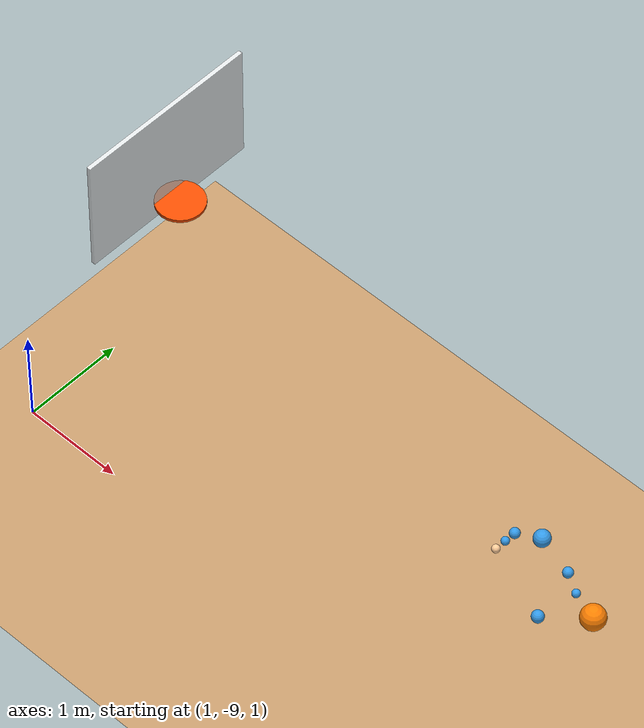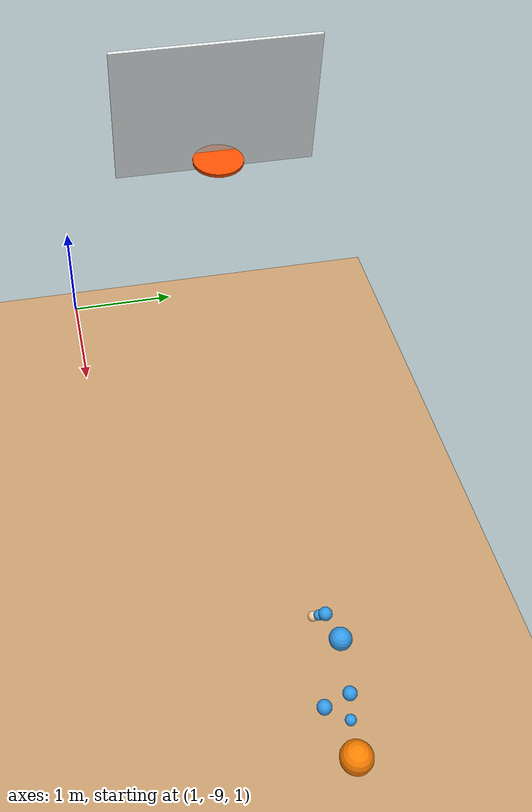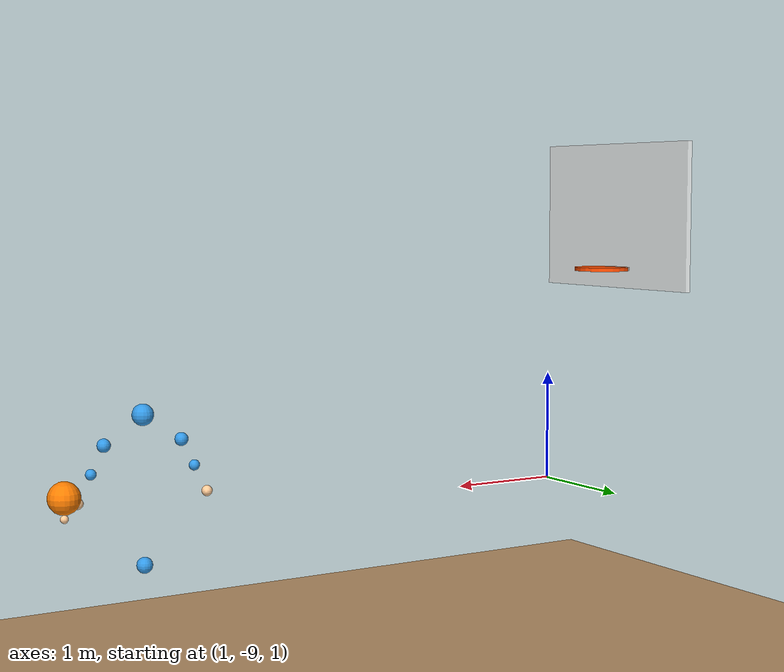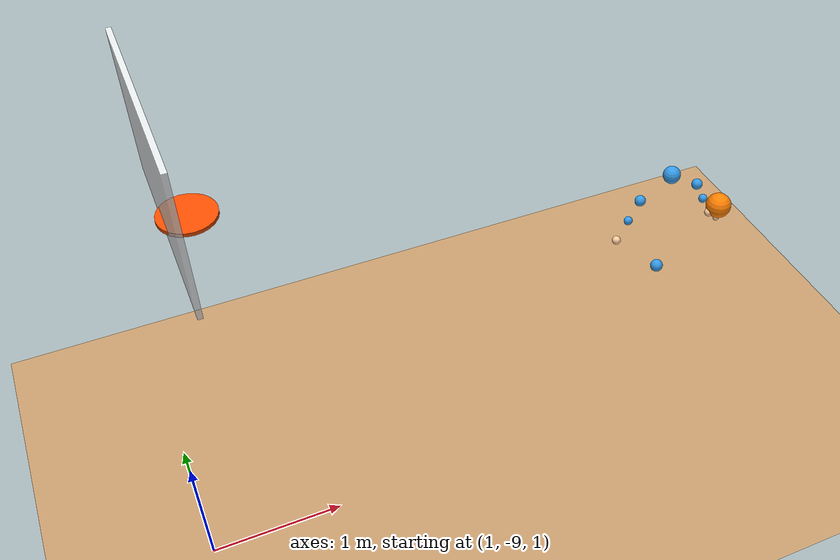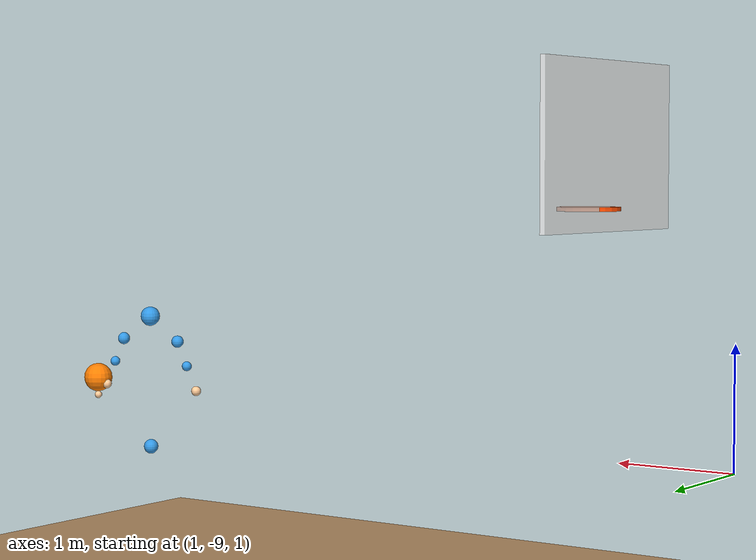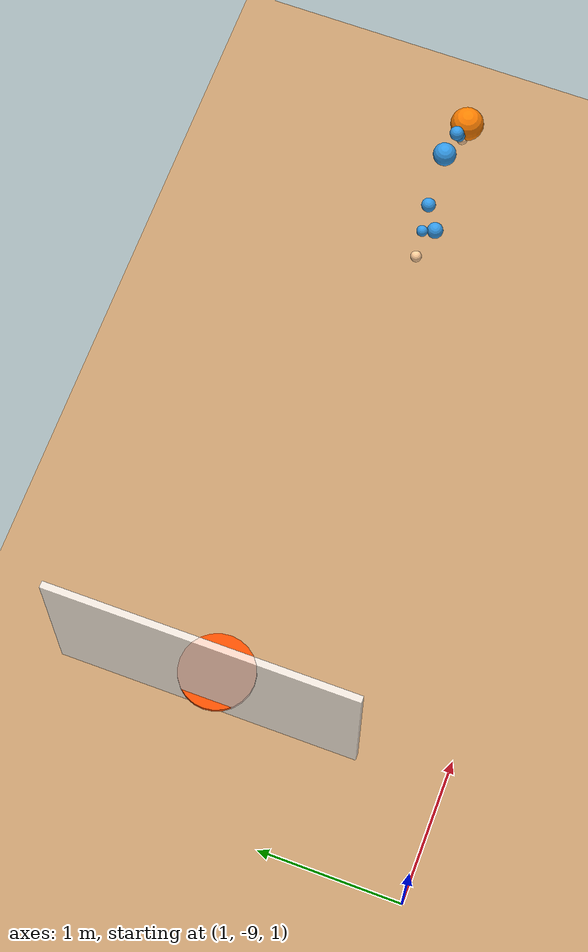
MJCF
<?xml version="1.0" encoding="utf-8"?>
<mujoco model="keypoints_visualization">
    <!--
    Simple visualization: Each keypoint is an independent sphere.
    Positions come directly from the skeleton data.
    -->

    <option gravity="0 0 -9.81" timestep="0.002"/>

    <visual>
        <global offwidth="1920" offheight="1080"/>
        <headlight ambient="0.5 0.5 0.5" diffuse="0.8 0.8 0.8"/>
    </visual>

    <asset>
        <material name="court" rgba="0.76 0.60 0.42 1"/>
        <material name="ball" rgba="1 0.5 0 1"/>
        <material name="joint" rgba="0.2 0.6 0.9 1"/>
        <material name="hand" rgba="1 0.8 0.6 1"/>
        <material name="rim" rgba="1 0.3 0 1"/>
    </asset>

    <worldbody>
        <light pos="5 -8 10" dir="0 0 -1" diffuse="1 1 1"/>

        <!-- Court -->
        <geom name="court" type="plane" size="15 15 0.1" material="court"/>

        <!-- Hoop placeholder - position will be updated -->
        <body name="hoop" pos="1.5 -7.6 3.05">
            <geom name="rim" type="cylinder" size="0.229 0.015" material="rim"/>
            <geom name="backboard" type="box" pos="-0.15 0 0.45" size="0.02 0.91 0.61" rgba="1 1 1 0.8"/>
        </body>

        <!-- Each keypoint as independent body with freejoint -->

        <!-- Right arm (shooting) -->
        <body name="r_shoulder" pos="6 -7.6 1.9">
            <freejoint/>
            <geom type="sphere" size="0.05" material="joint"/>
        </body>

        <body name="r_elbow" pos="6.1 -7.6 1.7">
            <freejoint/>
            <geom type="sphere" size="0.04" material="joint"/>
        </body>

        <body name="r_wrist" pos="6.2 -7.6 1.5">
            <freejoint/>
            <geom type="sphere" size="0.04" material="hand"/>
        </body>

        <body name="r_finger" pos="6.3 -7.6 1.4">
            <freejoint/>
            <geom type="sphere" size="0.03" material="hand"/>
        </body>

        <!-- Left arm (guide) -->
        <body name="l_shoulder" pos="5.4 -7.6 1.9">
            <freejoint/>
            <geom type="sphere" size="0.05" material="joint"/>
        </body>

        <body name="l_elbow" pos="5.3 -7.6 1.7">
            <freejoint/>
            <geom type="sphere" size="0.04" material="joint"/>
        </body>

        <body name="l_wrist" pos="5.2 -7.6 1.5">
            <freejoint/>
            <geom type="sphere" size="0.04" material="hand"/>
        </body>

        <!-- Head and torso -->
        <body name="head" pos="5.7 -7.6 2.1">
            <freejoint/>
            <geom type="sphere" size="0.08" material="joint"/>
        </body>

        <body name="mid_hip" pos="5.7 -7.6 1.0">
            <freejoint/>
            <geom type="sphere" size="0.06" material="joint"/>
        </body>

        <!-- Basketball -->
        <body name="ball" pos="6.3 -7.6 1.55">
            <freejoint/>
            <geom type="sphere" size="0.12" material="ball" mass="0.625"/>
        </body>

    </worldbody>

</mujoco>
